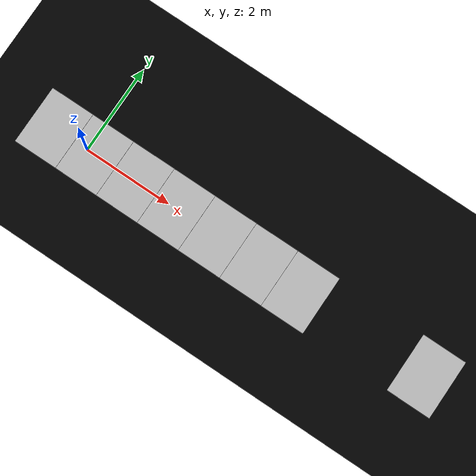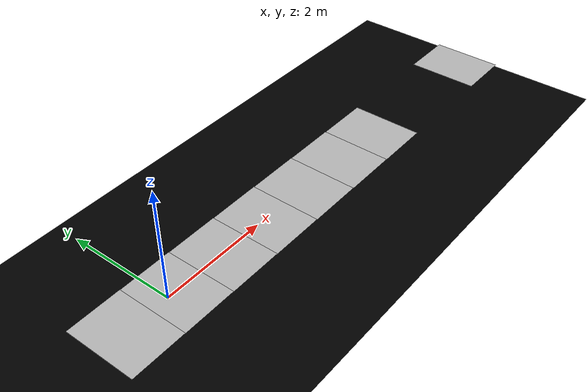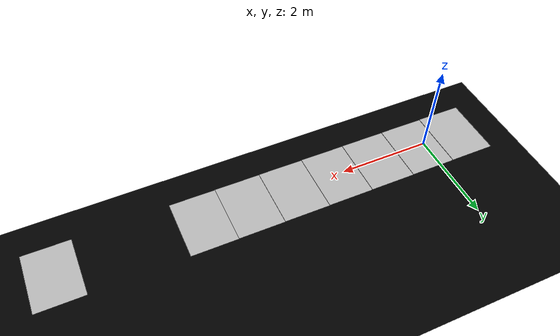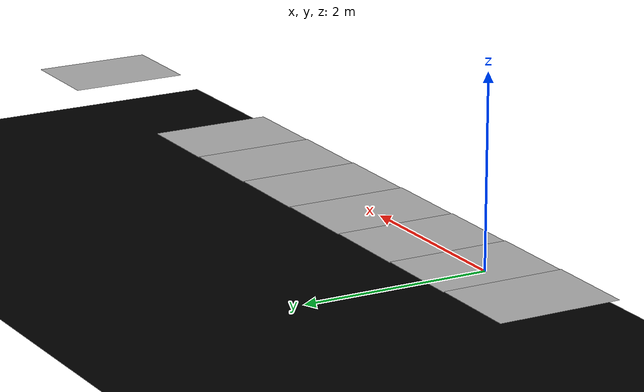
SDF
<sdf version="1.9">
 <world name="line_following_track">
  <physics type="ode">
   <max_step_size>0.004</max_step_size>
   <real_time_factor>1.0</real_time_factor>
   <real_time_update_rate>250</real_time_update_rate>
  </physics>
  <gravity>0 0 -9.8</gravity>
  <magnetic_field>6e-06 2.3e-05 -4.2e-05</magnetic_field>
  <atmosphere type="adiabatic"/>
  <scene>
   <grid>false</grid>
   <ambient>0.4 0.4 0.4 1</ambient>
   <background>0.7 0.7 0.7 1</background>
   <shadows>true</shadows>
  </scene>
  <model name="ground_plane">
   <static>true</static>
   <link name="link">
    <collision name="collision">
     <geometry><plane><normal>0 0 1</normal><size>1 1</size></plane></geometry>
    </collision>
    <visual name="visual">
     <geometry><plane><normal>0 0 1</normal><size>500 500</size></plane></geometry>
     <material><ambient>0 0 0 1</ambient><diffuse>0 0 0 1</diffuse></material>
    </visual>
    <pose>0 0 -1 0 -0 0</pose>
    <inertial>
     <pose>0 0 -1 0 -0 0</pose>
     <mass>1</mass>
     <inertia><ixx>1</ixx><ixy>0</ixy><ixz>0</ixz><iyy>1</iyy><iyz>0</iyz><izz>1</izz></inertia>
    </inertial>
   </link>
   <pose>0 0 -1 0 -0 0</pose>
  </model>
  <include><uri>model://frame1</uri></include>
  <include><uri>model://frame2</uri></include>
  <include><uri>model://frame3</uri></include>
  <include><uri>model://frame4</uri></include>
  <include><uri>model://frame5</uri></include>
  <include><uri>model://frame6</uri></include>
  <include><uri>model://frame7</uri></include>
  <include><uri>model://frame10</uri></include>
  <light name="sunUTC" type="directional">
   <pose>0 0 500 0 -0 0</pose>
   <intensity>1</intensity>
   <direction>0.001 0.625 -0.78</direction>
   <diffuse>0.904 0.904 0.904 1</diffuse>
   <specular>0.271 0.271 0.271 1</specular>
   <attenuation><range>2000</range><linear>0</linear><constant>1</constant><quadratic>0</quadratic></attenuation>
   <spot><inner_angle>0</inner_angle><outer_angle>0</outer_angle><falloff>0</falloff></spot>
  </light>
  <spherical_coordinates>
   <surface_model>EARTH_WGS84</surface_model>
   <world_frame_orientation>ENU</world_frame_orientation>
   <latitude_deg>47.397971057728974</latitude_deg>
   <longitude_deg>8.546163739800146</longitude_deg>
   <elevation>0</elevation>
  </spherical_coordinates>
 </world>
</sdf>

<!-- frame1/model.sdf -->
<sdf version="1.6">
  <model name="frame1">
    <static>true</static>
    <pose>1 0 0 1.57 0 0</pose>

    <link name="link_0">
      <visual name="visual">
        <geometry>
          <mesh>
            <uri>meshes/model.obj</uri>
          </mesh>
        </geometry>

      </visual>
      <collision name="collision_0">
        <pose>0 0 0 0 0 0</pose>

        <geometry>
          <mesh>
            <uri>meshes/model.obj</uri>
          </mesh>
        </geometry>
      </collision>
    </link>
  </model>
</sdf>

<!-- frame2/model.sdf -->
<sdf version="1.6">
  <model name="frame2">
    <static>true</static>
    <pose>0 0 0 1.57 0 0</pose>

    <link name="link_0">
      <visual name="visual">
        <geometry>
          <mesh>
            <uri>meshes/model.obj</uri>
          </mesh>
        </geometry>

      </visual>
      <collision name="collision_0">
        <pose>0 0 0 0 0 0</pose>

        <geometry>
          <mesh>
            <uri>meshes/model.obj</uri>
          </mesh>
        </geometry>
      </collision>
    </link>
  </model>
</sdf>

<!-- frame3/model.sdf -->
<sdf version="1.6">
  <model name="frame3">
    <static>true</static>
    <pose>2 0 0 1.57 0 0</pose>

    <link name="link_0">
      <visual name="visual">
        <geometry>
          <mesh>
            <uri>meshes/model.obj</uri>
          </mesh>
        </geometry>

      </visual>
      <collision name="collision_0">
        <pose>0 0 0 0 0 0</pose>
        <geometry>
          <mesh>
            <uri>meshes/model.obj</uri>
          </mesh>
        </geometry>
      </collision>
    </link>
  </model>
</sdf>

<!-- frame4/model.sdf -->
<sdf version="1.6">
  <model name="frame4">
    <static>true</static>
    <pose>3 0 0 1.57 0 0</pose>

    <link name="link_0">
      <visual name="visual">
        <geometry>
          <mesh>
            <uri>meshes/model.obj</uri>
          </mesh>
        </geometry>

      </visual>
      <collision name="collision_0">
        <pose>0 0 0 0 0 0</pose>
        <geometry>
          <mesh>
            <uri>meshes/model.obj</uri>
          </mesh>
        </geometry>
      </collision>
    </link>
  </model>
</sdf>

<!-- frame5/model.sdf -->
<sdf version="1.6">
  <model name="frame5">
    <static>true</static>
    <pose>4 0 0 1.57 0 0</pose>

    <link name="link_0">
      <visual name="visual">
        <geometry>
          <mesh>
            <uri>meshes/model.obj</uri>
          </mesh>
        </geometry>

      </visual>
      <collision name="collision_0">
        <pose>0 0 0 0 0 0</pose>
        <geometry>
          <mesh>
            <uri>meshes/model.obj</uri>
          </mesh>
        </geometry>
      </collision>
    </link>
  </model>
</sdf>

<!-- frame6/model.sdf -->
<sdf version="1.6">
  <model name="frame6">
    <static>true</static>
    <pose>5 0 0 1.57 0 0</pose>

    <link name="link_0">
      <visual name="visual">
        <geometry>
          <mesh>
            <uri>meshes/model.obj</uri>
          </mesh>
        </geometry>

      </visual>
      <collision name="collision_0">
        <pose>0 0 0 0 0 0</pose>
        <geometry>
          <mesh>
            <uri>meshes/model.obj</uri>
          </mesh>
        </geometry>
      </collision>
    </link>
  </model>
</sdf>

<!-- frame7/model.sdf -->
<sdf version="1.6">
  <model name="frame7">
    <static>true</static>
    <pose>6 0 0 1.57 0 0</pose>

    <link name="link_0">
      <visual name="visual">
        <geometry>
          <mesh>
            <uri>meshes/model.obj</uri>
          </mesh>
        </geometry>

      </visual>
      <collision name="collision_0">
        <pose>0 0 0 0 0 0</pose>
        <geometry>
          <mesh>
            <uri>meshes/model.obj</uri>
          </mesh>
        </geometry>
      </collision>
    </link>
  </model>
</sdf>

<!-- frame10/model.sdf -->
<sdf version="1.6">
  <model name="frame10">
    <static>true</static>
    <pose>9 0 0 1.57 0 0</pose>

    <link name="link_0">
      <visual name="visual">
        <geometry>
          <mesh>
            <uri>meshes/model.obj</uri>
          </mesh>
        </geometry>

      </visual>
      <collision name="collision_0">
        <pose>0 0 0 0 0 0</pose>
        <geometry>
          <mesh>
            <uri>meshes/model.obj</uri>
          </mesh>
        </geometry>
      </collision>
    </link>
  </model>
</sdf>
